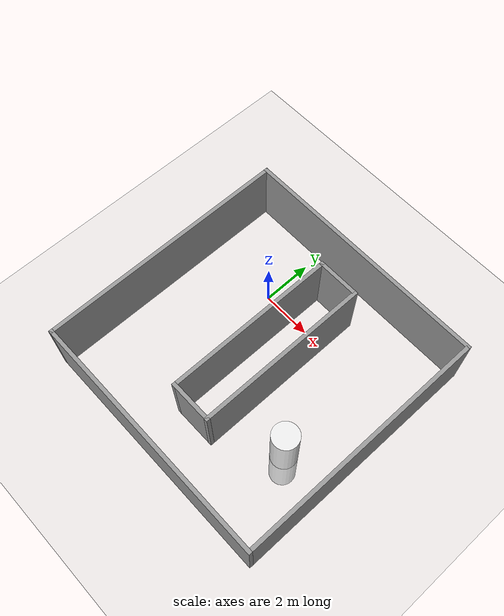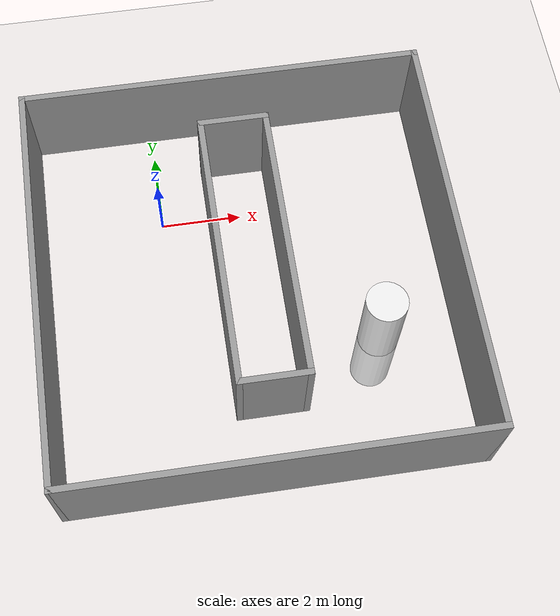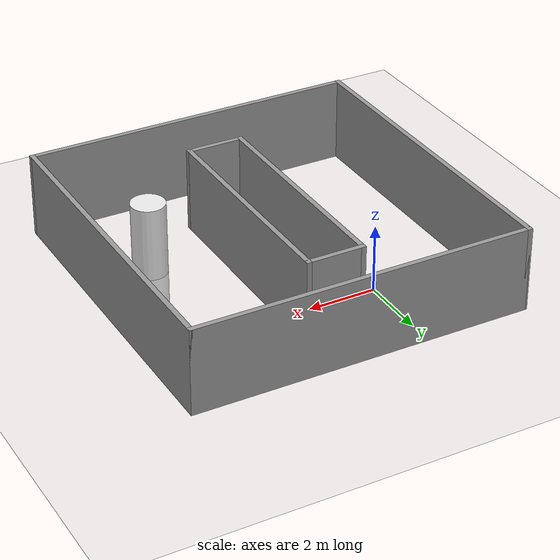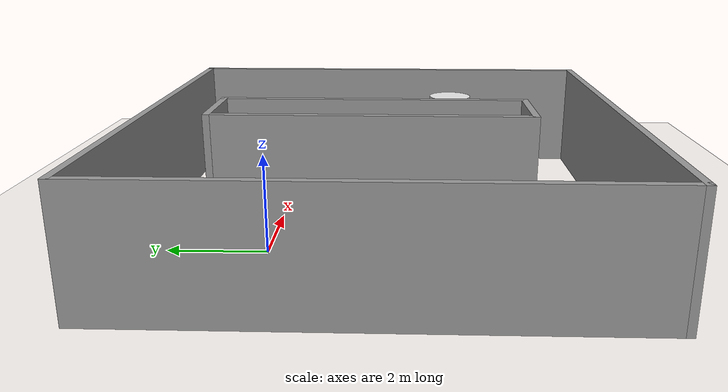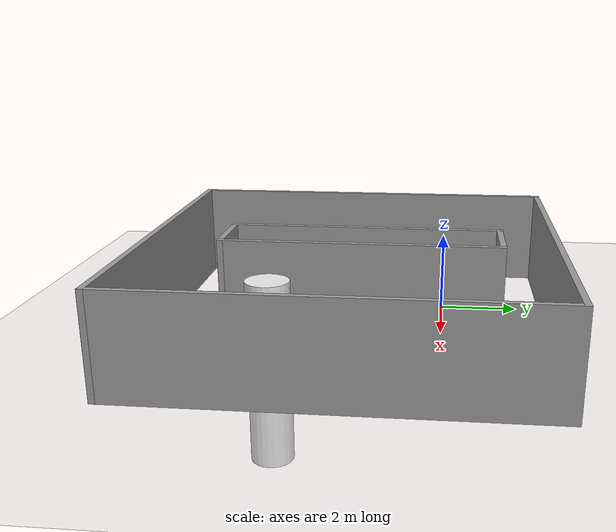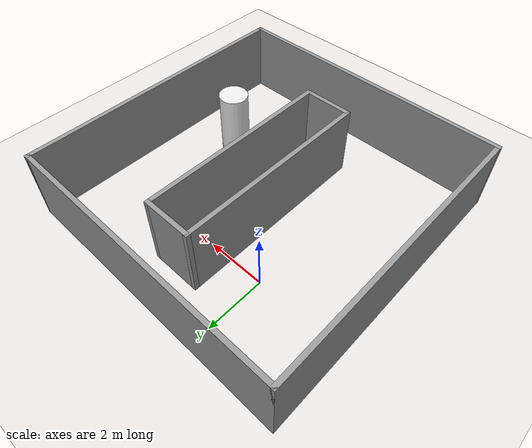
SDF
<sdf version="1.7">
 <world name="default">
  <light name="sun" type="directional">
   <pose>0 0 10 0 -0 0</pose>
   <diffuse>0.8 0.8 0.8 1</diffuse>
   <specular>0.2 0.2 0.2 1</specular>
   <attenuation>
    <range>1000</range>
    <constant>0.9</constant>
    <linear>0.01</linear>
    <quadratic>0.001</quadratic>
   </attenuation>
   <direction>-0.5 0.1 -0.9</direction>
   <spot><inner_angle>0</inner_angle><outer_angle>0</outer_angle><falloff>0</falloff></spot>
  </light>
  <model name="ground_plane">
   <static>1</static>
   <link name="link">
    <collision name="collision">
     <geometry><plane><normal>0 0 1</normal><size>100 100</size></plane></geometry>
     <surface><friction><ode><mu>100</mu><mu2>50</mu2></ode></friction></surface>
    </collision>
    <visual name="visual">
     <cast_shadows>0</cast_shadows>
     <geometry><plane><normal>0 0 1</normal><size>100 100</size></plane></geometry>
     <material>
      <script><uri>file://media/materials/scripts/gazebo.material</uri><name>Gazebo/Grey</name></script>
     </material>
    </visual>
   </link>
  </model>
  <gravity>0 0 -9.8</gravity>
  <magnetic_field>6e-06 2.3e-05 -4.2e-05</magnetic_field>
  <atmosphere type="adiabatic"/>
  <physics type="ode">
   <max_step_size>0.001</max_step_size>
   <real_time_factor>1</real_time_factor>
   <real_time_update_rate>1000</real_time_update_rate>
  </physics>
  <scene><ambient>0.4 0.4 0.4 1</ambient><background>0.7 0.7 0.7 1</background><shadows>1</shadows></scene>
  <spherical_coordinates>
   <surface_model>EARTH_WGS84</surface_model>
   <latitude_deg>0</latitude_deg>
   <longitude_deg>0</longitude_deg>
   <elevation>0</elevation>
   <heading_deg>0</heading_deg>
  </spherical_coordinates>
  <model name="wall10m">
   <pose>1.89874 -2.23174 0 0 -0 0</pose>
   <link name="Wall_0">
    <collision name="Wall_0_Collision">
     <geometry><box><size>10 0.15 2.5</size></box></geometry>
     <pose>0 0 1.25 0 -0 0</pose>
    </collision>
    <visual name="Wall_0_Visual">
     <pose>0 0 1.25 0 -0 0</pose>
     <geometry><box><size>10 0.15 2.5</size></box></geometry>
     <material>
      <script><uri>file://media/materials/scripts/gazebo.material</uri><name>Gazebo/Grey</name></script>
      <ambient>1 1 1 1</ambient>
     </material>
     <meta><layer>0</layer></meta>
    </visual>
    <pose>-0 -4.925 0 0 -0 0</pose>
   </link>
   <link name="Wall_11">
    <collision name="Wall_11_Collision">
     <geometry><box><size>1.75 0.15 2.5</size></box></geometry>
     <pose>0 0 1.25 0 -0 0</pose>
    </collision>
    <visual name="Wall_11_Visual">
     <pose>0 0 1.25 0 -0 0</pose>
     <geometry><box><size>1.75 0.15 2.5</size></box></geometry>
     <material>
      <script><uri>file://media/materials/scripts/gazebo.material</uri><name>Gazebo/Grey</name></script>
      <ambient>1 1 1 1</ambient>
     </material>
     <meta><layer>0</layer></meta>
    </visual>
    <pose>0.142462 3.61062 0 0 -0 0</pose>
   </link>
   <link name="Wall_12">
    <collision name="Wall_12_Collision">
     <geometry><box><size>6.87781 0.15 2.5</size></box></geometry>
     <pose>0 0 1.25 0 -0 0</pose>
    </collision>
    <visual name="Wall_12_Visual">
     <pose>0 0 1.25 0 -0 0</pose>
     <geometry><box><size>6.87781 0.15 2.5</size></box></geometry>
     <material>
      <script><uri>file://media/materials/scripts/gazebo.material</uri><name>Gazebo/Grey</name></script>
      <ambient>1 1 1 1</ambient>
     </material>
     <meta><layer>0</layer></meta>
    </visual>
    <pose>0.942461 0.246818 0 0 -0 -1.5708</pose>
   </link>
   <link name="Wall_15">
    <collision name="Wall_15_Collision">
     <geometry><box><size>6.87781 0.15 2.5</size></box></geometry>
     <pose>0 0 1.25 0 -0 0</pose>
    </collision>
    <visual name="Wall_15_Visual">
     <pose>0 0 1.25 0 -0 0</pose>
     <geometry><box><size>6.87781 0.15 2.5</size></box></geometry>
     <material>
      <script><uri>file://media/materials/scripts/gazebo.material</uri><name>Gazebo/Grey</name></script>
      <ambient>1 1 1 1</ambient>
     </material>
     <meta><layer>0</layer></meta>
    </visual>
    <pose>-0.657538 0.246818 0 0 -0 -1.5708</pose>
   </link>
   <link name="Wall_16">
    <collision name="Wall_16_Collision">
     <geometry><box><size>1.75 0.15 2.5</size></box></geometry>
     <pose>0 0 1.25 0 -0 0</pose>
    </collision>
    <visual name="Wall_16_Visual">
     <pose>0 0 1.25 0 -0 0</pose>
     <geometry><box><size>1.75 0.15 2.5</size></box></geometry>
     <material>
      <script><uri>file://media/materials/scripts/gazebo.material</uri><name>Gazebo/Grey</name></script>
      <ambient>1 1 1 1</ambient>
     </material>
     <meta><layer>0</layer></meta>
    </visual>
    <pose>0.142462 -3.11698 0 0 -0 0</pose>
   </link>
   <link name="Wall_7">
    <collision name="Wall_7_Collision">
     <geometry><box><size>10 0.15 2.5</size></box></geometry>
     <pose>0 0 1.25 0 -0 0</pose>
    </collision>
    <visual name="Wall_7_Visual">
     <pose>0 0 1.25 0 -0 0</pose>
     <geometry><box><size>10 0.15 2.5</size></box></geometry>
     <material>
      <script><uri>file://media/materials/scripts/gazebo.material</uri><name>Gazebo/Grey</name></script>
      <ambient>1 1 1 1</ambient>
     </material>
     <meta><layer>0</layer></meta>
    </visual>
    <pose>-4.925 -0 0 0 -0 1.5708</pose>
   </link>
   <link name="Wall_8">
    <collision name="Wall_8_Collision">
     <geometry><box><size>10 0.15 2.5</size></box></geometry>
     <pose>0 0 1.25 0 -0 0</pose>
    </collision>
    <visual name="Wall_8_Visual">
     <pose>0 0 1.25 0 -0 0</pose>
     <geometry><box><size>10 0.15 2.5</size></box></geometry>
     <material>
      <script><uri>file://media/materials/scripts/gazebo.material</uri><name>Gazebo/Grey</name></script>
      <ambient>1 1 1 1</ambient>
     </material>
     <meta><layer>0</layer></meta>
    </visual>
    <pose>-0 4.925 0 0 -0 0</pose>
   </link>
   <link name="Wall_9">
    <collision name="Wall_9_Collision">
     <geometry><box><size>10 0.15 2.5</size></box></geometry>
     <pose>0 0 1.25 0 -0 0</pose>
    </collision>
    <visual name="Wall_9_Visual">
     <pose>0 0 1.25 0 -0 0</pose>
     <geometry><box><size>10 0.15 2.5</size></box></geometry>
     <material>
      <script><uri>file://media/materials/scripts/gazebo.material</uri><name>Gazebo/Grey</name></script>
      <ambient>1 1 1 1</ambient>
     </material>
     <meta><layer>0</layer></meta>
    </visual>
    <pose>4.925 -0 0 0 -0 -1.5708</pose>
   </link>
   <static>1</static>
  </model>
  <model name="White">
   <link name="link_0">
    <inertial>
     <mass>1</mass>
     <inertia><ixx>0.145833</ixx><ixy>0</ixy><ixz>0</ixz><iyy>0.145833</iyy><iyz>0</iyz><izz>0.125</izz></inertia>
    </inertial>
    <visual name="visual">
     <geometry><cylinder><radius>0.5</radius><length>4.31537</length></cylinder></geometry>
     <material>
      <lighting>1</lighting>
      <script><uri>file://media/materials/scripts/gazebo.material</uri><name>Gazebo/White</name></script>
      <shader type="vertex"><normal_map>__default__</normal_map></shader>
      <ambient>1 1 1 1</ambient>
      <diffuse>1 1 1 1</diffuse>
      <specular>0 0 0 1</specular>
      <emissive>0 0 0 1</emissive>
     </material>
    </visual>
    <collision name="collision">
     <geometry><cylinder><radius>0.5</radius><length>4.31537</length></cylinder></geometry>
     <surface>
      <friction>
       <ode><mu>1</mu><mu2>1</mu2><fdir1>0 0 0</fdir1><slip1>0</slip1><slip2>0</slip2></ode>
       <torsional>
        <coefficient>1</coefficient>
        <patch_radius>0</patch_radius>
        <surface_radius>0</surface_radius>
        <use_patch_radius>1</use_patch_radius>
        <ode><slip>0</slip></ode>
       </torsional>
      </friction>
      <bounce><restitution_coefficient>0</restitution_coefficient><threshold>1e+06</threshold></bounce>
      <contact>
       <collide_without_contact>0</collide_without_contact>
       <collide_without_contact_bitmask>1</collide_without_contact_bitmask>
       <collide_bitmask>1</collide_bitmask>
       <ode>
        <soft_cfm>0</soft_cfm>
        <soft_erp>0.2</soft_erp>
        <kp>1e+13</kp>
        <kd>1</kd>
        <max_vel>0.01</max_vel>
        <min_depth>0</min_depth>
       </ode>
       <bullet>
        <split_impulse>1</split_impulse>
        <split_impulse_penetration_threshold>-0.01</split_impulse_penetration_threshold>
        <soft_cfm>0</soft_cfm>
        <soft_erp>0.2</soft_erp>
        <kp>1e+13</kp>
        <kd>1</kd>
       </bullet>
      </contact>
     </surface>
    </collision>
   </link>
   <static>1</static>
   <pose>4.88061 -3.80628 0 0 -0 0</pose>
  </model>
 </world>
</sdf>
